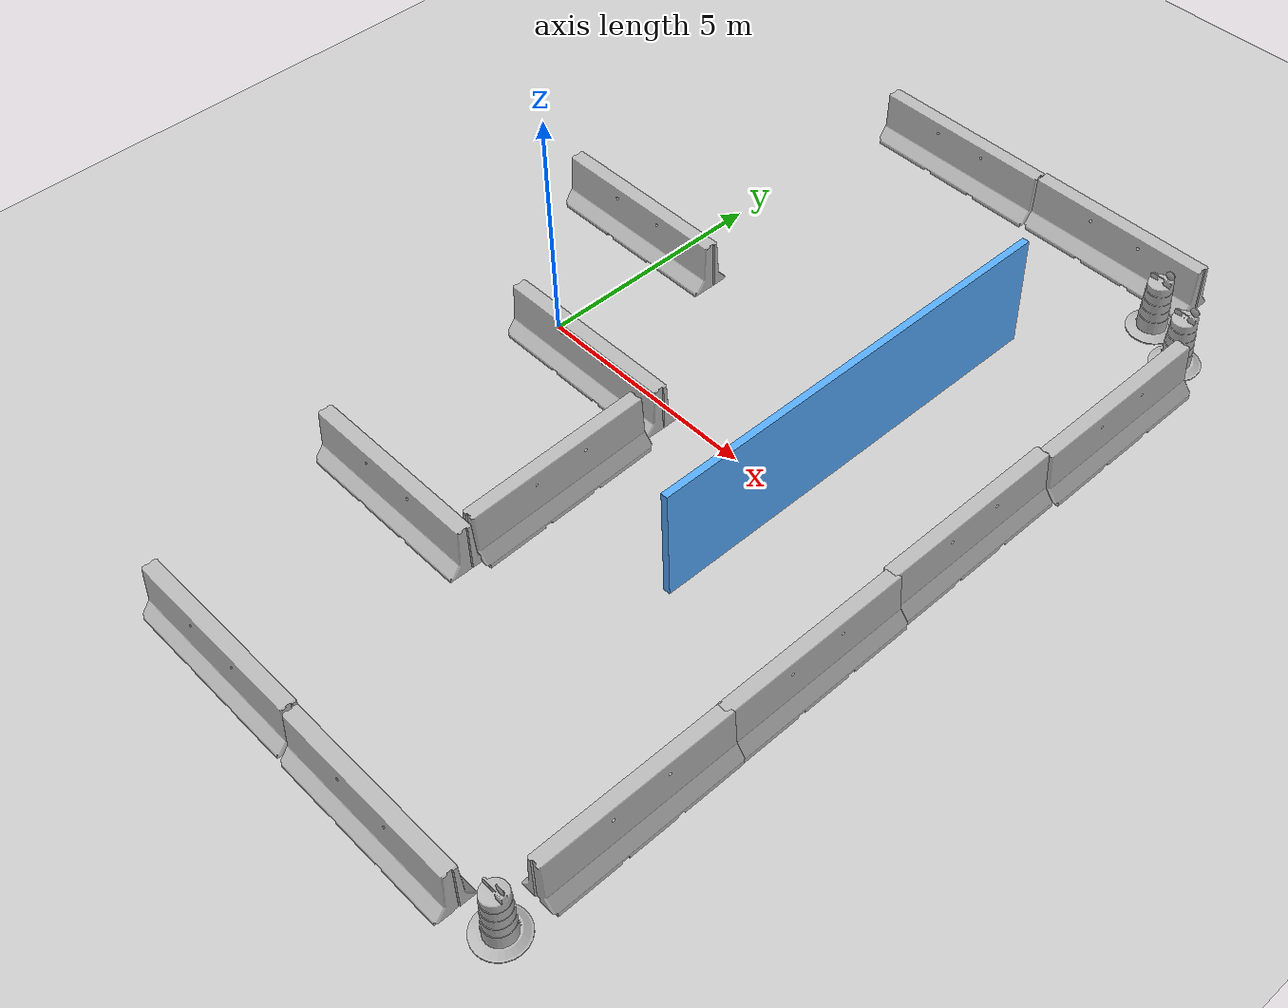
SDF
<sdf version="1.6">
 <world name="default">
  <model name="ground_plane">
   <static>1</static>
   <link name="link">
    <collision name="collision">
     <geometry><plane><normal>0 0 1</normal><size>100 100</size></plane></geometry>
     <surface><friction><ode><mu>100</mu><mu2>50</mu2></ode></friction></surface>
    </collision>
    <visual name="visual">
     <cast_shadows>0</cast_shadows>
     <geometry><plane><normal>0 0 1</normal><size>100 100</size></plane></geometry>
     <material>
      <script><uri>file://media/materials/scripts/gazebo.material</uri><name>Gazebo/Grey</name></script>
     </material>
    </visual>
   </link>
  </model>
  <model name="jersey_barrier_clone_0">
   <static>1</static>
   <link name="link">
    <visual name="visual">
     <geometry>
      <mesh><uri>model://jersey_barrier/meshes/jersey_barrier.dae</uri><scale>1 1 1</scale></mesh>
     </geometry>
    </visual>
    <collision name="upright">
     <pose>0 0 0.5715 0 -0 0</pose>
     <geometry><box><size>4.06542 0.3063 1.143</size></box></geometry>
    </collision>
    <collision name="base">
     <pose>0 0 0.032258 0 -0 0</pose>
     <geometry><box><size>4.06542 0.8107 0.064516</size></box></geometry>
    </collision>
    <collision name="base2">
     <pose>0 0 0.1 0 -0 0</pose>
     <geometry><box><size>4.06542 0.65 0.1</size></box></geometry>
    </collision>
    <collision name="base3">
     <pose>0 0 0.2 0 -0 0</pose>
     <geometry><box><size>4.06542 0.5 0.1</size></box></geometry>
    </collision>
    <collision name="left-angle">
     <pose>0 -0.224 0.2401 0.9 -0 0</pose>
     <geometry><box><size>4.06542 0.5 0.064516</size></box></geometry>
    </collision>
    <collision name="right-angle">
     <pose>0 0.224 0.2401 -0.9 0 0</pose>
     <geometry><box><size>4.06542 0.5 0.064516</size></box></geometry>
    </collision>
   </link>
   <pose>2.39773 9.29085 0 0 -0 0</pose>
  </model>
  <model name="jersey_barrier_clone_1">
   <static>1</static>
   <link name="link">
    <visual name="visual">
     <geometry>
      <mesh><uri>model://jersey_barrier/meshes/jersey_barrier.dae</uri><scale>1 1 1</scale></mesh>
     </geometry>
    </visual>
    <collision name="upright">
     <pose>0 0 0.5715 0 -0 0</pose>
     <geometry><box><size>4.06542 0.3063 1.143</size></box></geometry>
    </collision>
    <collision name="base">
     <pose>0 0 0.032258 0 -0 0</pose>
     <geometry><box><size>4.06542 0.8107 0.064516</size></box></geometry>
    </collision>
    <collision name="base2">
     <pose>0 0 0.1 0 -0 0</pose>
     <geometry><box><size>4.06542 0.65 0.1</size></box></geometry>
    </collision>
    <collision name="base3">
     <pose>0 0 0.2 0 -0 0</pose>
     <geometry><box><size>4.06542 0.5 0.1</size></box></geometry>
    </collision>
    <collision name="left-angle">
     <pose>0 -0.224 0.2401 0.9 -0 0</pose>
     <geometry><box><size>4.06542 0.5 0.064516</size></box></geometry>
    </collision>
    <collision name="right-angle">
     <pose>0 0.224 0.2401 -0.9 0 0</pose>
     <geometry><box><size>4.06542 0.5 0.064516</size></box></geometry>
    </collision>
   </link>
   <pose>6.45464 9.33993 0 0 -0 0</pose>
  </model>
  <model name="jersey_barrier_clone_3">
   <static>1</static>
   <link name="link">
    <visual name="visual">
     <geometry>
      <mesh><uri>model://jersey_barrier/meshes/jersey_barrier.dae</uri><scale>1 1 1</scale></mesh>
     </geometry>
    </visual>
    <collision name="upright">
     <pose>0 0 0.5715 0 -0 0</pose>
     <geometry><box><size>4.06542 0.3063 1.143</size></box></geometry>
    </collision>
    <collision name="base">
     <pose>0 0 0.032258 0 -0 0</pose>
     <geometry><box><size>4.06542 0.8107 0.064516</size></box></geometry>
    </collision>
    <collision name="base2">
     <pose>0 0 0.1 0 -0 0</pose>
     <geometry><box><size>4.06542 0.65 0.1</size></box></geometry>
    </collision>
    <collision name="base3">
     <pose>0 0 0.2 0 -0 0</pose>
     <geometry><box><size>4.06542 0.5 0.1</size></box></geometry>
    </collision>
    <collision name="left-angle">
     <pose>0 -0.224 0.2401 0.9 -0 0</pose>
     <geometry><box><size>4.06542 0.5 0.064516</size></box></geometry>
    </collision>
    <collision name="right-angle">
     <pose>0 0.224 0.2401 -0.9 0 0</pose>
     <geometry><box><size>4.06542 0.5 0.064516</size></box></geometry>
    </collision>
   </link>
   <pose>9.44656 5.35522 0 0 0 -1.56865</pose>
  </model>
  <model name="jersey_barrier_clone_3_clone">
   <static>1</static>
   <link name="link">
    <visual name="visual">
     <geometry>
      <mesh><uri>model://jersey_barrier/meshes/jersey_barrier.dae</uri><scale>1 1 1</scale></mesh>
     </geometry>
    </visual>
    <collision name="upright">
     <pose>0 0 0.5715 0 -0 0</pose>
     <geometry><box><size>4.06542 0.3063 1.143</size></box></geometry>
    </collision>
    <collision name="base">
     <pose>0 0 0.032258 0 -0 0</pose>
     <geometry><box><size>4.06542 0.8107 0.064516</size></box></geometry>
    </collision>
    <collision name="base2">
     <pose>0 0 0.1 0 -0 0</pose>
     <geometry><box><size>4.06542 0.65 0.1</size></box></geometry>
    </collision>
    <collision name="base3">
     <pose>0 0 0.2 0 -0 0</pose>
     <geometry><box><size>4.06542 0.5 0.1</size></box></geometry>
    </collision>
    <collision name="left-angle">
     <pose>0 -0.224 0.2401 0.9 -0 0</pose>
     <geometry><box><size>4.06542 0.5 0.064516</size></box></geometry>
    </collision>
    <collision name="right-angle">
     <pose>0 0.224 0.2401 -0.9 0 0</pose>
     <geometry><box><size>4.06542 0.5 0.064516</size></box></geometry>
    </collision>
   </link>
   <pose>9.3727 1.33119 0 0 0 -1.56865</pose>
  </model>
  <model name="jersey_barrier_clone_3_clone_0">
   <static>1</static>
   <link name="link">
    <visual name="visual">
     <geometry>
      <mesh><uri>model://jersey_barrier/meshes/jersey_barrier.dae</uri><scale>1 1 1</scale></mesh>
     </geometry>
    </visual>
    <collision name="upright">
     <pose>0 0 0.5715 0 -0 0</pose>
     <geometry><box><size>4.06542 0.3063 1.143</size></box></geometry>
    </collision>
    <collision name="base">
     <pose>0 0 0.032258 0 -0 0</pose>
     <geometry><box><size>4.06542 0.8107 0.064516</size></box></geometry>
    </collision>
    <collision name="base2">
     <pose>0 0 0.1 0 -0 0</pose>
     <geometry><box><size>4.06542 0.65 0.1</size></box></geometry>
    </collision>
    <collision name="base3">
     <pose>0 0 0.2 0 -0 0</pose>
     <geometry><box><size>4.06542 0.5 0.1</size></box></geometry>
    </collision>
    <collision name="left-angle">
     <pose>0 -0.224 0.2401 0.9 -0 0</pose>
     <geometry><box><size>4.06542 0.5 0.064516</size></box></geometry>
    </collision>
    <collision name="right-angle">
     <pose>0 0.224 0.2401 -0.9 0 0</pose>
     <geometry><box><size>4.06542 0.5 0.064516</size></box></geometry>
    </collision>
   </link>
   <pose>9.4315 -2.6268 0 0 0 -1.56865</pose>
  </model>
  <model name="jersey_barrier_clone_3_clone_1">
   <static>1</static>
   <link name="link">
    <visual name="visual">
     <geometry>
      <mesh><uri>model://jersey_barrier/meshes/jersey_barrier.dae</uri><scale>1 1 1</scale></mesh>
     </geometry>
    </visual>
    <collision name="upright">
     <pose>0 0 0.5715 0 -0 0</pose>
     <geometry><box><size>4.06542 0.3063 1.143</size></box></geometry>
    </collision>
    <collision name="base">
     <pose>0 0 0.032258 0 -0 0</pose>
     <geometry><box><size>4.06542 0.8107 0.064516</size></box></geometry>
    </collision>
    <collision name="base2">
     <pose>0 0 0.1 0 -0 0</pose>
     <geometry><box><size>4.06542 0.65 0.1</size></box></geometry>
    </collision>
    <collision name="base3">
     <pose>0 0 0.2 0 -0 0</pose>
     <geometry><box><size>4.06542 0.5 0.1</size></box></geometry>
    </collision>
    <collision name="left-angle">
     <pose>0 -0.224 0.2401 0.9 -0 0</pose>
     <geometry><box><size>4.06542 0.5 0.064516</size></box></geometry>
    </collision>
    <collision name="right-angle">
     <pose>0 0.224 0.2401 -0.9 0 0</pose>
     <geometry><box><size>4.06542 0.5 0.064516</size></box></geometry>
    </collision>
   </link>
   <pose>9.44969 -6.53485 0 0 0 -1.56865</pose>
  </model>
  <model name="jersey_barrier_clone_2_clone">
   <static>1</static>
   <link name="link">
    <visual name="visual">
     <geometry>
      <mesh><uri>model://jersey_barrier/meshes/jersey_barrier.dae</uri><scale>1 1 1</scale></mesh>
     </geometry>
    </visual>
    <collision name="upright">
     <pose>0 0 0.5715 0 -0 0</pose>
     <geometry><box><size>4.06542 0.3063 1.143</size></box></geometry>
    </collision>
    <collision name="base">
     <pose>0 0 0.032258 0 -0 0</pose>
     <geometry><box><size>4.06542 0.8107 0.064516</size></box></geometry>
    </collision>
    <collision name="base2">
     <pose>0 0 0.1 0 -0 0</pose>
     <geometry><box><size>4.06542 0.65 0.1</size></box></geometry>
    </collision>
    <collision name="base3">
     <pose>0 0 0.2 0 -0 0</pose>
     <geometry><box><size>4.06542 0.5 0.1</size></box></geometry>
    </collision>
    <collision name="left-angle">
     <pose>0 -0.224 0.2401 0.9 -0 0</pose>
     <geometry><box><size>4.06542 0.5 0.064516</size></box></geometry>
    </collision>
    <collision name="right-angle">
     <pose>0 0.224 0.2401 -0.9 0 0</pose>
     <geometry><box><size>4.06542 0.5 0.064516</size></box></geometry>
    </collision>
   </link>
   <pose>6.70657 -9.54347 0 0 -0 0</pose>
  </model>
  <model name="jersey_barrier_clone_2_clone_0">
   <static>1</static>
   <link name="link">
    <visual name="visual">
     <geometry>
      <mesh><uri>model://jersey_barrier/meshes/jersey_barrier.dae</uri><scale>1 1 1</scale></mesh>
     </geometry>
    </visual>
    <collision name="upright">
     <pose>0 0 0.5715 0 -0 0</pose>
     <geometry><box><size>4.06542 0.3063 1.143</size></box></geometry>
    </collision>
    <collision name="base">
     <pose>0 0 0.032258 0 -0 0</pose>
     <geometry><box><size>4.06542 0.8107 0.064516</size></box></geometry>
    </collision>
    <collision name="base2">
     <pose>0 0 0.1 0 -0 0</pose>
     <geometry><box><size>4.06542 0.65 0.1</size></box></geometry>
    </collision>
    <collision name="base3">
     <pose>0 0 0.2 0 -0 0</pose>
     <geometry><box><size>4.06542 0.5 0.1</size></box></geometry>
    </collision>
    <collision name="left-angle">
     <pose>0 -0.224 0.2401 0.9 -0 0</pose>
     <geometry><box><size>4.06542 0.5 0.064516</size></box></geometry>
    </collision>
    <collision name="right-angle">
     <pose>0 0.224 0.2401 -0.9 0 0</pose>
     <geometry><box><size>4.06542 0.5 0.064516</size></box></geometry>
    </collision>
   </link>
   <pose>2.59616 -9.50928 0 0 -0 0</pose>
  </model>
  <model name="Construction Barrel">
   <link name="link">
    <inertial>
     <pose>0 0 0.4 0 -0 0</pose>
     <mass>500</mass>
     <inertia><ixx>51.2096</ixx><iyy>51.2096</iyy><izz>25</izz><ixy>0</ixy><ixz>0</ixz><iyz>0</iyz></inertia>
    </inertial>
    <collision name="collision">
     <geometry>
      <mesh><uri>model://construction_barrel/meshes/construction_barrel.dae</uri><scale>1 1 1</scale></mesh>
     </geometry>
    </collision>
    <visual name="visual">
     <geometry>
      <mesh><uri>model://construction_barrel/meshes/construction_barrel.dae</uri><scale>1 1 1</scale></mesh>
     </geometry>
    </visual>
   </link>
   <pose>9.07438 7.91052 1e-06 3e-06 2e-06 -5.6e-05</pose>
  </model>
  <model name="Construction Barrel_0">
   <link name="link">
    <inertial>
     <pose>0 0 0.4 0 -0 0</pose>
     <mass>500</mass>
     <inertia><ixx>51.2096</ixx><iyy>51.2096</iyy><izz>25</izz><ixy>0</ixy><ixz>0</ixz><iyz>0</iyz></inertia>
    </inertial>
    <collision name="collision">
     <geometry>
      <mesh><uri>model://construction_barrel/meshes/construction_barrel.dae</uri><scale>1 1 1</scale></mesh>
     </geometry>
    </collision>
    <visual name="visual">
     <geometry>
      <mesh><uri>model://construction_barrel/meshes/construction_barrel.dae</uri><scale>1 1 1</scale></mesh>
     </geometry>
    </visual>
   </link>
   <pose>8.12823 8.41633 0 0 0 -5.2e-05</pose>
  </model>
  <model name="Construction Barrel_3">
   <link name="link">
    <inertial>
     <pose>0 0 0.4 0 -0 0</pose>
     <mass>500</mass>
     <inertia><ixx>51.2096</ixx><iyy>51.2096</iyy><izz>25</izz><ixy>0</ixy><ixz>0</ixz><iyz>0</iyz></inertia>
    </inertial>
    <collision name="collision">
     <geometry>
      <mesh><uri>model://construction_barrel/meshes/construction_barrel.dae</uri><scale>1 1 1</scale></mesh>
     </geometry>
    </collision>
    <visual name="visual">
     <geometry>
      <mesh><uri>model://construction_barrel/meshes/construction_barrel.dae</uri><scale>1 1 1</scale></mesh>
     </geometry>
    </visual>
   </link>
   <pose>9.45358 -9.29435 -1e-06 -8e-06 -2e-06 -5.2e-05</pose>
  </model>
  <model name="jersey_barrier_0_clone_0">
   <static>1</static>
   <link name="link">
    <visual name="visual">
     <geometry>
      <mesh><uri>model://jersey_barrier/meshes/jersey_barrier.dae</uri><scale>1 1 1</scale></mesh>
     </geometry>
    </visual>
    <collision name="upright">
     <pose>0 0 0.5715 0 -0 0</pose>
     <geometry><box><size>4.06542 0.3063 1.143</size></box></geometry>
    </collision>
    <collision name="base">
     <pose>0 0 0.032258 0 -0 0</pose>
     <geometry><box><size>4.06542 0.8107 0.064516</size></box></geometry>
    </collision>
    <collision name="base2">
     <pose>0 0 0.1 0 -0 0</pose>
     <geometry><box><size>4.06542 0.65 0.1</size></box></geometry>
    </collision>
    <collision name="base3">
     <pose>0 0 0.2 0 -0 0</pose>
     <geometry><box><size>4.06542 0.5 0.1</size></box></geometry>
    </collision>
    <collision name="left-angle">
     <pose>0 -0.224 0.2401 0.9 -0 0</pose>
     <geometry><box><size>4.06542 0.5 0.064516</size></box></geometry>
    </collision>
    <collision name="right-angle">
     <pose>0 0.224 0.2401 -0.9 0 0</pose>
     <geometry><box><size>4.06542 0.5 0.064516</size></box></geometry>
    </collision>
   </link>
   <pose>3.40005 -2.95093 0 0 0 -1.5374</pose>
  </model>
  <model name="jersey_barrier_0_clone_1">
   <static>1</static>
   <link name="link">
    <visual name="visual">
     <geometry>
      <mesh><uri>model://jersey_barrier/meshes/jersey_barrier.dae</uri><scale>1 1 1</scale></mesh>
     </geometry>
    </visual>
    <collision name="upright">
     <pose>0 0 0.5715 0 -0 0</pose>
     <geometry><box><size>4.06542 0.3063 1.143</size></box></geometry>
    </collision>
    <collision name="base">
     <pose>0 0 0.032258 0 -0 0</pose>
     <geometry><box><size>4.06542 0.8107 0.064516</size></box></geometry>
    </collision>
    <collision name="base2">
     <pose>0 0 0.1 0 -0 0</pose>
     <geometry><box><size>4.06542 0.65 0.1</size></box></geometry>
    </collision>
    <collision name="base3">
     <pose>0 0 0.2 0 -0 0</pose>
     <geometry><box><size>4.06542 0.5 0.1</size></box></geometry>
    </collision>
    <collision name="left-angle">
     <pose>0 -0.224 0.2401 0.9 -0 0</pose>
     <geometry><box><size>4.06542 0.5 0.064516</size></box></geometry>
    </collision>
    <collision name="right-angle">
     <pose>0 0.224 0.2401 -0.9 0 0</pose>
     <geometry><box><size>4.06542 0.5 0.064516</size></box></geometry>
    </collision>
   </link>
   <pose>1.67017 -5.22309 0 0 -0 0</pose>
  </model>
  <model name="jersey_barrier_0_clone_clone">
   <static>1</static>
   <link name="link">
    <visual name="visual">
     <geometry>
      <mesh><uri>model://jersey_barrier/meshes/jersey_barrier.dae</uri><scale>1 1 1</scale></mesh>
     </geometry>
    </visual>
    <collision name="upright">
     <pose>0 0 0.5715 0 -0 0</pose>
     <geometry><box><size>4.06542 0.3063 1.143</size></box></geometry>
    </collision>
    <collision name="base">
     <pose>0 0 0.032258 0 -0 0</pose>
     <geometry><box><size>4.06542 0.8107 0.064516</size></box></geometry>
    </collision>
    <collision name="base2">
     <pose>0 0 0.1 0 -0 0</pose>
     <geometry><box><size>4.06542 0.65 0.1</size></box></geometry>
    </collision>
    <collision name="base3">
     <pose>0 0 0.2 0 -0 0</pose>
     <geometry><box><size>4.06542 0.5 0.1</size></box></geometry>
    </collision>
    <collision name="left-angle">
     <pose>0 -0.224 0.2401 0.9 -0 0</pose>
     <geometry><box><size>4.06542 0.5 0.064516</size></box></geometry>
    </collision>
    <collision name="right-angle">
     <pose>0 0.224 0.2401 -0.9 0 0</pose>
     <geometry><box><size>4.06542 0.5 0.064516</size></box></geometry>
    </collision>
   </link>
   <pose>-0.725913 2.93614 0 0 -0 0</pose>
  </model>
  <model name="jersey_barrier_0_clone_clone_clone">
   <static>1</static>
   <link name="link">
    <visual name="visual">
     <geometry>
      <mesh><uri>model://jersey_barrier/meshes/jersey_barrier.dae</uri><scale>1 1 1</scale></mesh>
     </geometry>
    </visual>
    <collision name="upright">
     <pose>0 0 0.5715 0 -0 0</pose>
     <geometry><box><size>4.06542 0.3063 1.143</size></box></geometry>
    </collision>
    <collision name="base">
     <pose>0 0 0.032258 0 -0 0</pose>
     <geometry><box><size>4.06542 0.8107 0.064516</size></box></geometry>
    </collision>
    <collision name="base2">
     <pose>0 0 0.1 0 -0 0</pose>
     <geometry><box><size>4.06542 0.65 0.1</size></box></geometry>
    </collision>
    <collision name="base3">
     <pose>0 0 0.2 0 -0 0</pose>
     <geometry><box><size>4.06542 0.5 0.1</size></box></geometry>
    </collision>
    <collision name="left-angle">
     <pose>0 -0.224 0.2401 0.9 -0 0</pose>
     <geometry><box><size>4.06542 0.5 0.064516</size></box></geometry>
    </collision>
    <collision name="right-angle">
     <pose>0 0.224 0.2401 -0.9 0 0</pose>
     <geometry><box><size>4.06542 0.5 0.064516</size></box></geometry>
    </collision>
   </link>
   <pose>1.50591 -0.501406 0 0 -0 0</pose>
  </model>
  <model name="cambio">
   <pose>6.39018 1.57912 0 0 -0 0</pose>
   <link name="Wall_0">
    <collision name="Wall_0_Collision">
     <geometry><box><size>9.25 0.15 2.5</size></box></geometry>
     <pose>0 0 1.25 0 -0 0</pose>
    </collision>
    <visual name="Wall_0_Visual">
     <pose>0 0 1.25 0 -0 0</pose>
     <geometry><box><size>9.25 0.15 2.5</size></box></geometry>
     <material>
      <script><uri>file://media/materials/scripts/gazebo.material</uri><name>Gazebo/Grey</name></script>
      <ambient>0.333333 0.666667 1 1</ambient>
     </material>
    </visual>
    <pose>0 0 0 0 -0 1.5708</pose>
   </link>
   <static>1</static>
  </model>
 </world>
</sdf>
